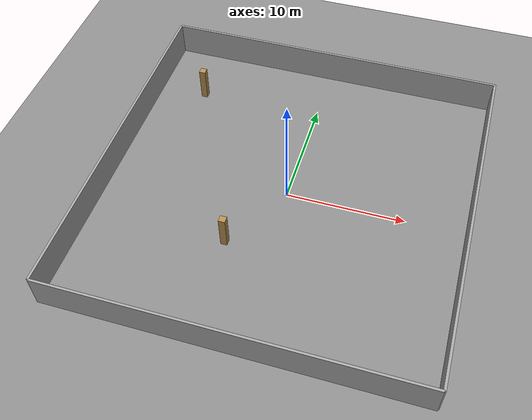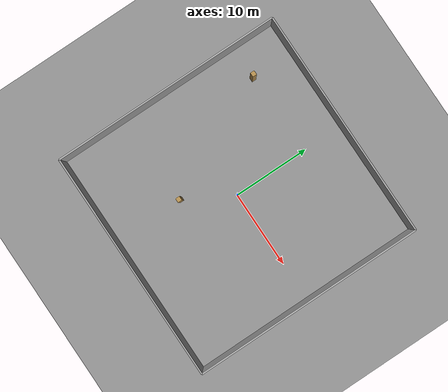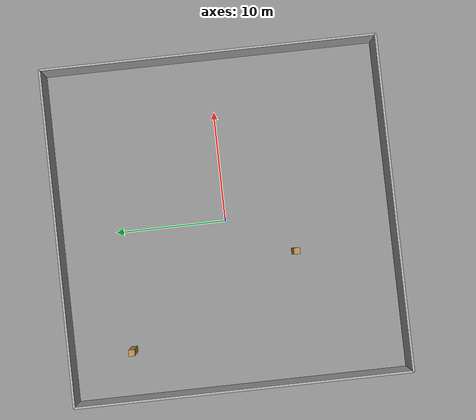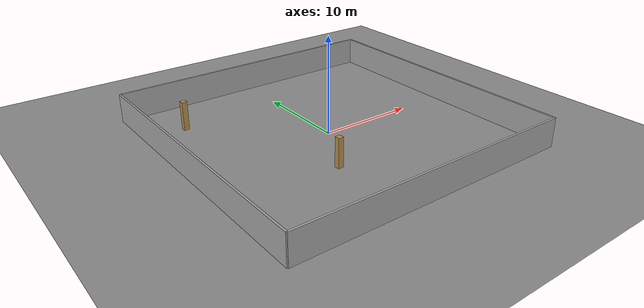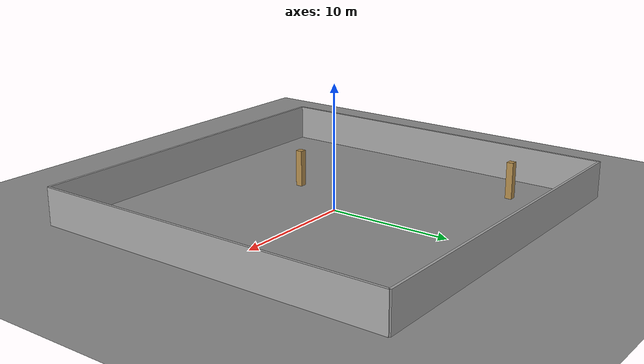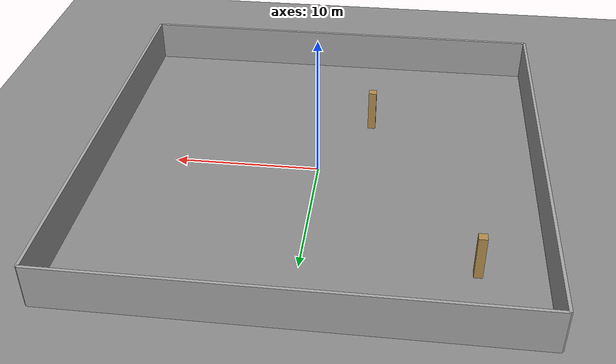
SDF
<?xml version="1.0"?>
<sdf version="1.6">
  <world name="hall_normal_low_0">
    <physics name="default_physics" type="ode">
      <real_time_update_rate>1000</real_time_update_rate>
      <max_step_size>0.001</max_step_size>
    </physics>
    <scene>
      <ambient>0.35750000000000004 0.35750000000000004 0.35750000000000004 1</ambient>
      <background>0.08 0.09 0.12 1</background>
      <shadows>true</shadows>
    </scene>
    <light name="sun" type="directional">
      <cast_shadows>true</cast_shadows>
      <pose>0 0 20 0 0 0</pose>
      <diffuse>0.65 0.65 0.65 1.0</diffuse>
      <specular>0.65 0.65 0.65 1.0</specular>
      <direction>-0.5 0.2 -1</direction>
    </light>
    <model name="ground_plane">
      <static>true</static>
      <link name="link">
        <collision name="collision"><geometry><plane><normal>0 0 1</normal><size>100 100</size></plane></geometry></collision>
        <visual name="visual">
          <geometry><plane><normal>0 0 1</normal><size>100 100</size></plane></geometry>
          <material><ambient>0.35 0.35 0.35 1</ambient><diffuse>0.55 0.55 0.55 1</diffuse></material>
        </visual>
      </link>
    </model>

    <model name="hall_north">
      <static>true</static>
      <pose>0.0000 15.0000 1.5000 0 0 0</pose>
      <link name="link">
        <collision name="collision"><geometry><box><size>30 0.2 3</size></box></geometry></collision>
        <visual name="visual">
          <geometry><box><size>30 0.2 3</size></box></geometry>
          <material><ambient>0.65 0.65 0.65 1</ambient><diffuse>0.65 0.65 0.65 1</diffuse></material>
        </visual>
      </link>
    </model>

    <model name="hall_south">
      <static>true</static>
      <pose>0.0000 -15.0000 1.5000 0 0 0</pose>
      <link name="link">
        <collision name="collision"><geometry><box><size>30 0.2 3</size></box></geometry></collision>
        <visual name="visual">
          <geometry><box><size>30 0.2 3</size></box></geometry>
          <material><ambient>0.65 0.65 0.65 1</ambient><diffuse>0.65 0.65 0.65 1</diffuse></material>
        </visual>
      </link>
    </model>

    <model name="hall_east">
      <static>true</static>
      <pose>15.0000 0.0000 1.5000 0 0 0</pose>
      <link name="link">
        <collision name="collision"><geometry><box><size>0.2 30 3</size></box></geometry></collision>
        <visual name="visual">
          <geometry><box><size>0.2 30 3</size></box></geometry>
          <material><ambient>0.65 0.65 0.65 1</ambient><diffuse>0.65 0.65 0.65 1</diffuse></material>
        </visual>
      </link>
    </model>

    <model name="hall_west">
      <static>true</static>
      <pose>-15.0000 0.0000 1.5000 0 0 0</pose>
      <link name="link">
        <collision name="collision"><geometry><box><size>0.2 30 3</size></box></geometry></collision>
        <visual name="visual">
          <geometry><box><size>0.2 30 3</size></box></geometry>
          <material><ambient>0.65 0.65 0.65 1</ambient><diffuse>0.65 0.65 0.65 1</diffuse></material>
        </visual>
      </link>
    </model>

    <model name="hall_column_0">
      <static>true</static>
      <pose>-3.3744 -5.9699 1.5000 0 0 0</pose>
      <link name="link">
        <collision name="collision"><geometry><box><size>0.55 0.55 3</size></box></geometry></collision>
        <visual name="visual">
          <geometry><box><size>0.55 0.55 3</size></box></geometry>
          <material><ambient>0.70 0.55 0.30 1</ambient><diffuse>0.70 0.55 0.30 1</diffuse></material>
        </visual>
      </link>
    </model>

    <model name="hall_column_1">
      <static>true</static>
      <pose>-10.7274 9.4782 1.5000 0 0 0</pose>
      <link name="link">
        <collision name="collision"><geometry><box><size>0.55 0.55 3</size></box></geometry></collision>
        <visual name="visual">
          <geometry><box><size>0.55 0.55 3</size></box></geometry>
          <material><ambient>0.70 0.55 0.30 1</ambient><diffuse>0.70 0.55 0.30 1</diffuse></material>
        </visual>
      </link>
    </model>
  </world>
</sdf>
